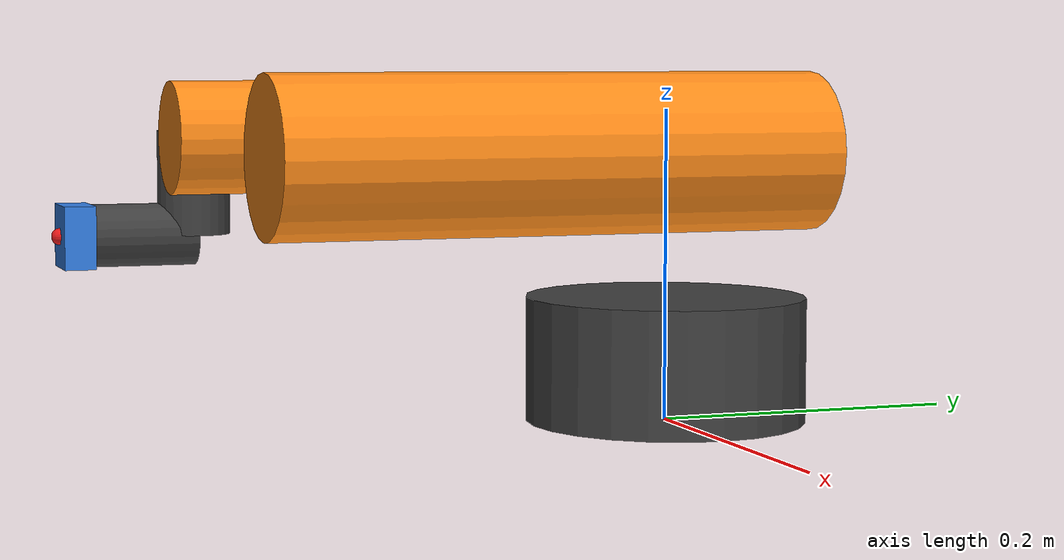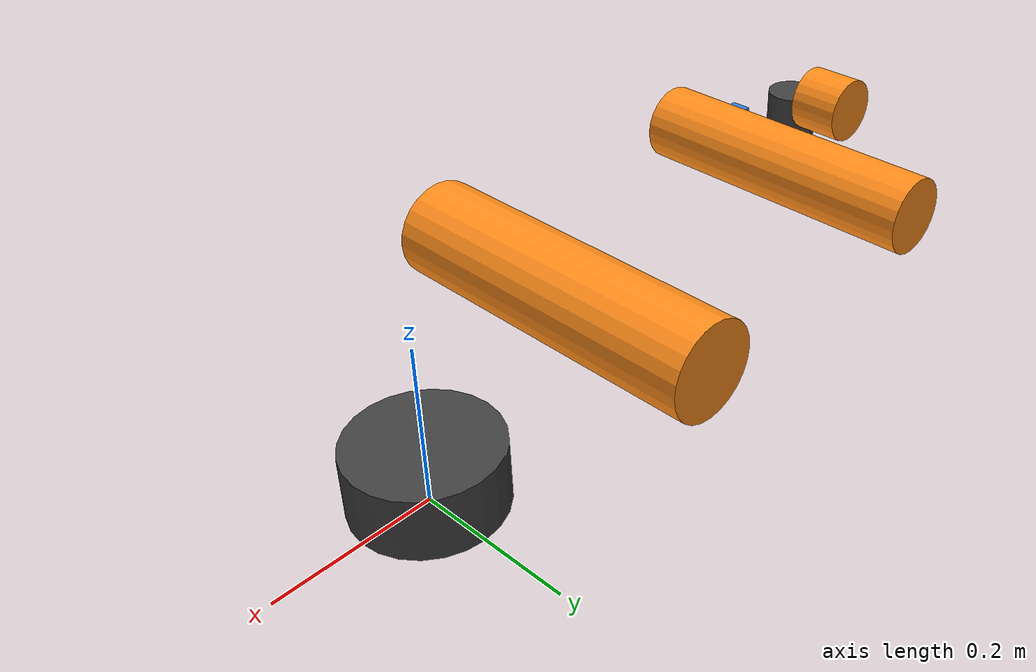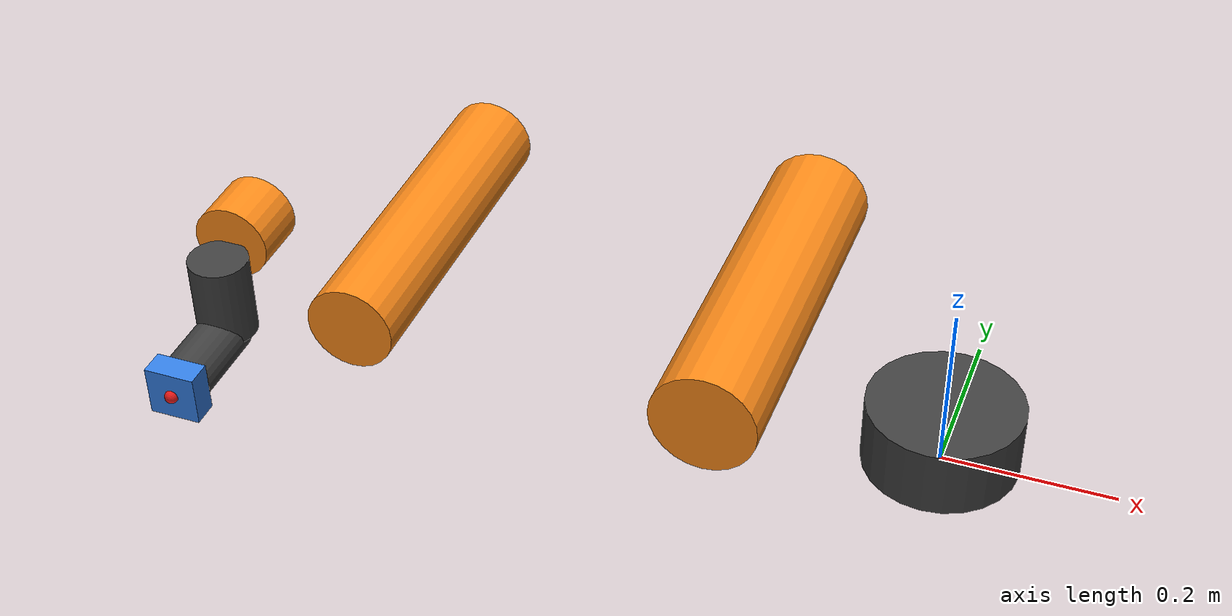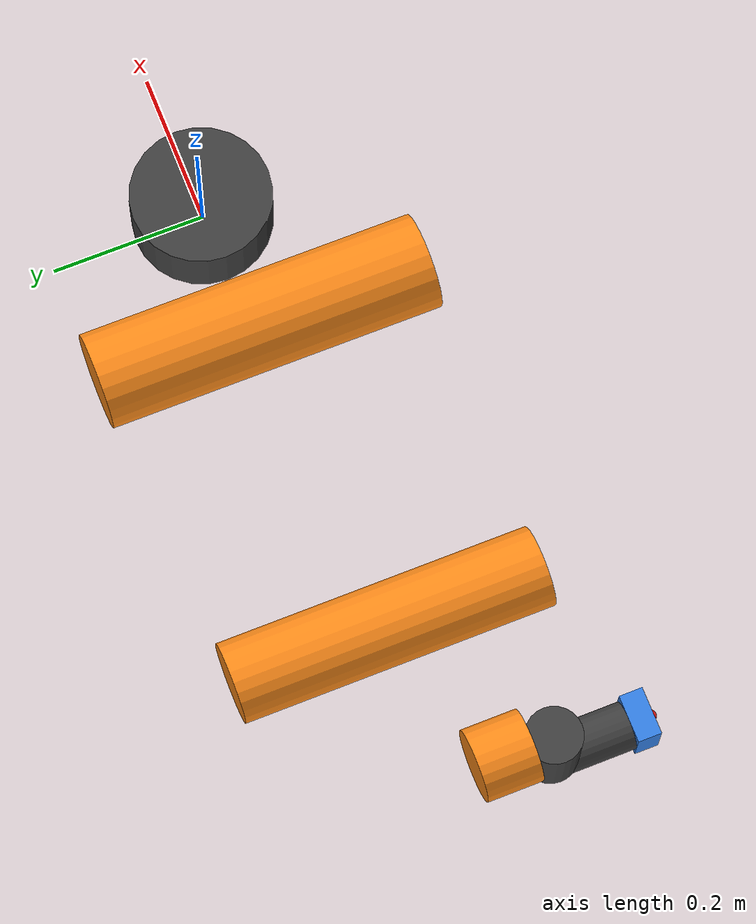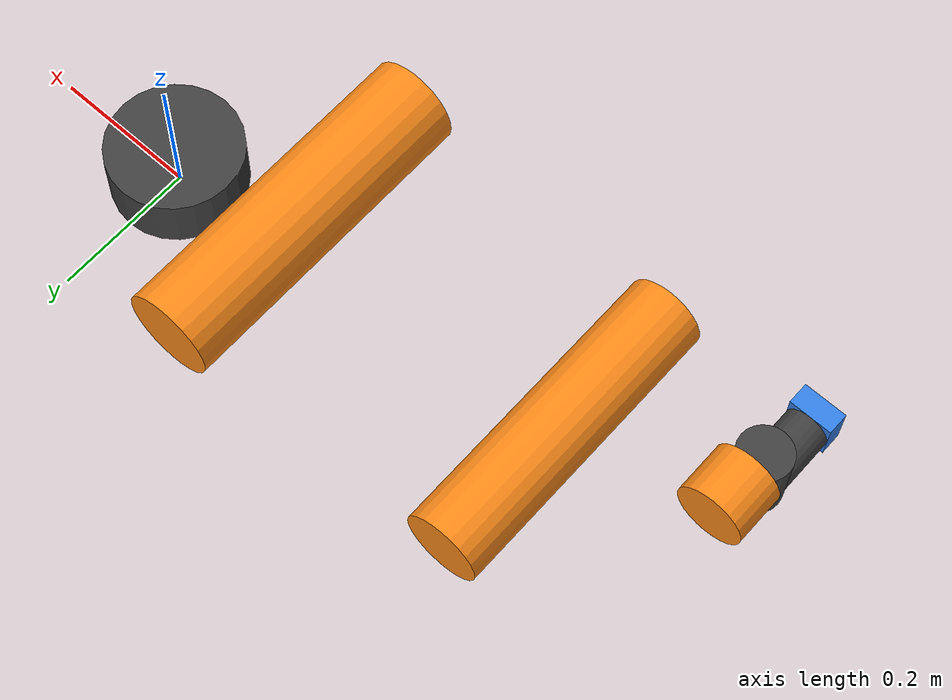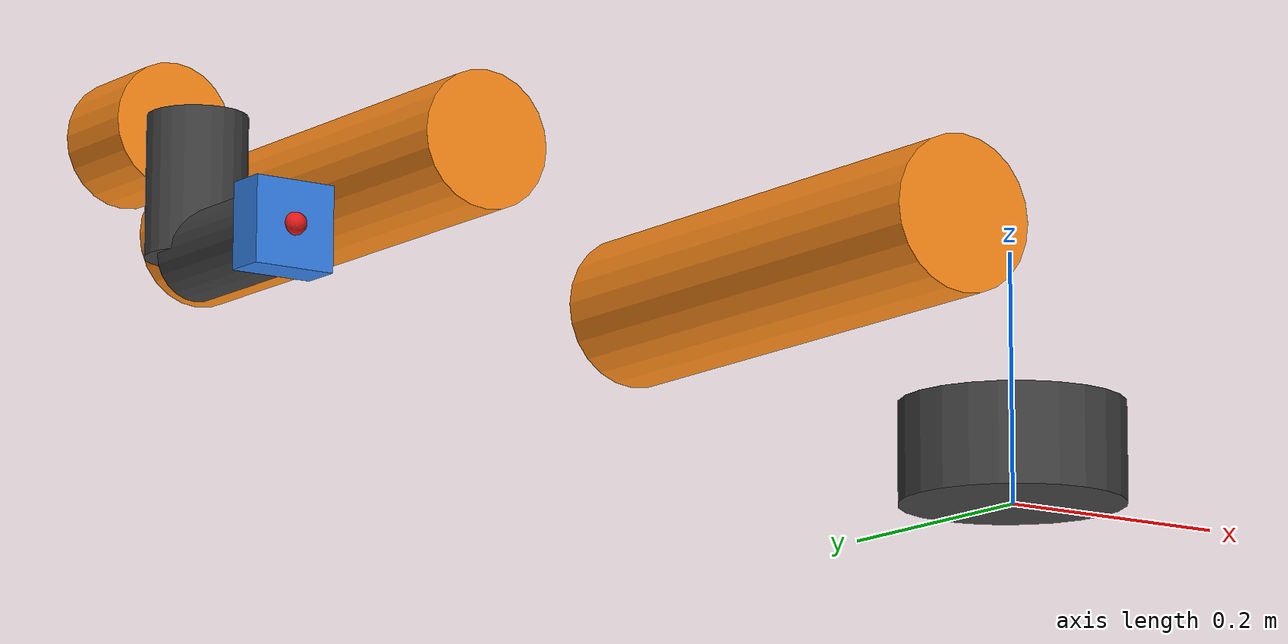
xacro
<?xml version="1.0"?>
<robot name="laundry_arm" xmlns:xacro="http://www.ros.org/wiki/xacro">

  <!-- ── Link lengths (m) — mirror config/ur7e_like.yaml `dh` ─────────── -->
  <xacro:property name="d1" value="0.1625"/>   <!-- base height to J1 axis -->
  <xacro:property name="a2" value="-0.425"/>
  <xacro:property name="a3" value="-0.3922"/>
  <xacro:property name="d4" value="0.1333"/>
  <xacro:property name="d5" value="0.0997"/>
  <xacro:property name="d6" value="0.0996"/>   <!-- J5->J6 (flange) -->

  <!-- Joint limits (rad) — soft limits for the visualizer; real limits
       are enforced in config/arm.yaml -->
  <xacro:property name="lim_large" value="3.1416"/>
  <xacro:property name="lim_wrist" value="6.2832"/>

  <!-- ── base_link ─────────────────────────────────────────────────────── -->
  <link name="base_link">
    <visual>
      <geometry>
        <cylinder length="0.08" radius="0.09"/>
      </geometry>
      <origin xyz="0 0 0.04" rpy="0 0 0"/>
      <material name="dark_grey"><color rgba="0.25 0.25 0.25 1.0"/></material>
    </visual>
  </link>

  <!-- ── J1: shoulder pan (about base Z) ───────────────────────────────── -->
  <joint name="shoulder_pan" type="revolute">
    <parent link="base_link"/>
    <child link="link1"/>
    <origin xyz="0 0 ${d1}" rpy="${pi/2} 0 0"/>
    <axis xyz="0 0 1"/>
    <limit lower="${-lim_large}" upper="${lim_large}" velocity="2.0" effort="50"/>
  </joint>
  <link name="link1">
    <visual>
      <geometry>
        <cylinder length="${-a2}" radius="0.06"/>
      </geometry>
      <origin xyz="${a2/2.0} 0 0" rpy="0 0 0"/>
      <material name="orange"><color rgba="1.0 0.55 0.1 1.0"/></material>
    </visual>
  </link>

  <!-- ── J2: shoulder lift ─────────────────────────────────────────────── -->
  <joint name="shoulder_lift" type="revolute">
    <parent link="link1"/>
    <child link="link2"/>
    <origin xyz="${a2} 0 0" rpy="0 0 0"/>
    <axis xyz="0 0 1"/>
    <limit lower="${-lim_large}" upper="${lim_large}" velocity="2.0" effort="50"/>
  </joint>
  <link name="link2">
    <visual>
      <geometry>
        <cylinder length="${-a3}" radius="0.05"/>
      </geometry>
      <origin xyz="${a3/2.0} 0 0" rpy="0 0 0"/>
      <material name="orange"><color rgba="1.0 0.55 0.1 1.0"/></material>
    </visual>
  </link>

  <!-- ── J3: elbow flex ────────────────────────────────────────────────── -->
  <joint name="elbow_flex" type="revolute">
    <parent link="link2"/>
    <child link="link3"/>
    <origin xyz="${a3} 0 0" rpy="0 0 0"/>
    <axis xyz="0 0 1"/>
    <limit lower="${-lim_large}" upper="${lim_large}" velocity="2.0" effort="30"/>
  </joint>
  <link name="link3">
    <visual>
      <geometry>
        <cylinder length="0.07" radius="0.045"/>
      </geometry>
      <origin xyz="0 0 ${d4/2.0}" rpy="0 0 0"/>
      <material name="orange"><color rgba="1.0 0.55 0.1 1.0"/></material>
    </visual>
  </link>

  <!-- ── J4: wrist 1 ───────────────────────────────────────────────────── -->
  <joint name="wrist_1" type="revolute">
    <parent link="link3"/>
    <child link="link4"/>
    <origin xyz="0 0 ${d4}" rpy="${pi/2} 0 0"/>
    <axis xyz="0 0 1"/>
    <limit lower="${-lim_wrist}" upper="${lim_wrist}" velocity="3.0" effort="15"/>
  </joint>
  <link name="link4">
    <visual>
      <geometry>
        <cylinder length="${d5}" radius="0.035"/>
      </geometry>
      <origin xyz="0 0 ${d5/2.0}" rpy="0 0 0"/>
      <material name="dark_grey"><color rgba="0.25 0.25 0.25 1.0"/></material>
    </visual>
  </link>

  <!-- ── J5: wrist 2 ───────────────────────────────────────────────────── -->
  <joint name="wrist_2" type="revolute">
    <parent link="link4"/>
    <child link="link5"/>
    <origin xyz="0 0 ${d5}" rpy="${-pi/2} 0 0"/>
    <axis xyz="0 0 1"/>
    <limit lower="${-lim_wrist}" upper="${lim_wrist}" velocity="3.0" effort="15"/>
  </joint>
  <link name="link5">
    <visual>
      <geometry>
        <cylinder length="${d6}" radius="0.03"/>
      </geometry>
      <origin xyz="0 0 ${d6/2.0}" rpy="0 0 0"/>
      <material name="dark_grey"><color rgba="0.25 0.25 0.25 1.0"/></material>
    </visual>
  </link>

  <!-- ── J6: wrist 3 (flange) ──────────────────────────────────────────── -->
  <joint name="wrist_3" type="revolute">
    <parent link="link5"/>
    <child link="link6"/>
    <origin xyz="0 0 ${d6}" rpy="0 0 0"/>
    <axis xyz="0 0 1"/>
    <limit lower="${-lim_wrist}" upper="${lim_wrist}" velocity="3.0" effort="10"/>
  </joint>
  <link name="link6">
    <visual>
      <geometry>
        <box size="0.06 0.06 0.03"/>
      </geometry>
      <origin xyz="0 0 0.015" rpy="0 0 0"/>
      <material name="blue"><color rgba="0.2 0.5 0.9 1.0"/></material>
    </visual>
  </link>

  <!-- ── TCP: gripper / hanger-hook tip (matches tool_offset in config) ── -->
  <joint name="tcp_joint" type="fixed">
    <parent link="link6"/>
    <child link="tcp"/>
    <origin xyz="0 0 0.03" rpy="0 0 0"/>
  </joint>
  <link name="tcp">
    <visual>
      <geometry>
        <sphere radius="0.008"/>
      </geometry>
      <material name="red"><color rgba="0.9 0.1 0.1 1.0"/></material>
    </visual>
  </link>

  <!-- ── World -> base (arm mounted at table height) ───────────────────── -->
  <joint name="world_joint" type="fixed">
    <parent link="world"/>
    <child link="base_link"/>
    <origin xyz="0 0 0" rpy="0 0 0"/>
  </joint>
  <link name="world"/>

</robot>
